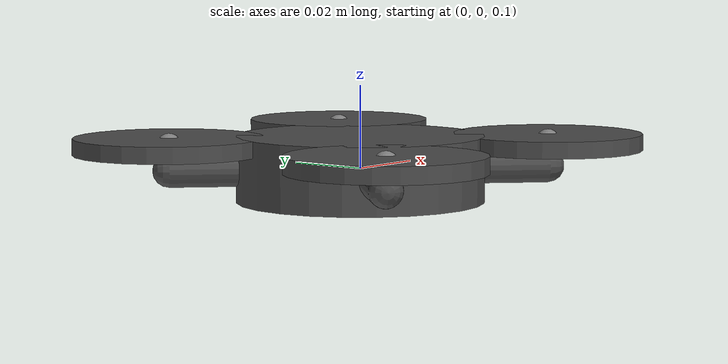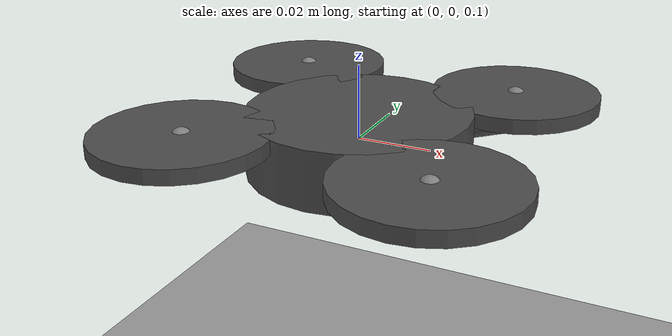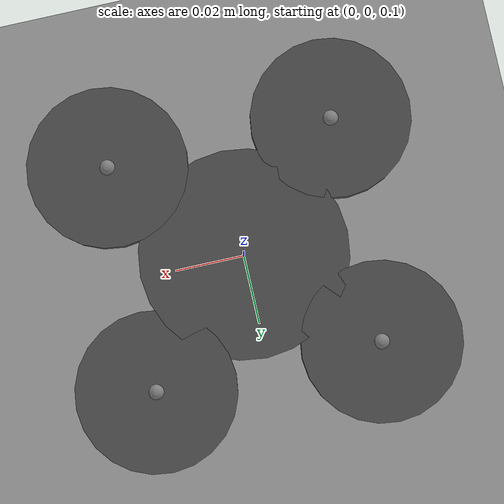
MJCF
<mujoco model="quadrotor">

  <compiler angle="radian" autolimits="true"/>

  <!--
    Crazyflie-class micro quadrotor
    Total mass  : ~34g
    Arm length  : 46mm (center to rotor)
    Max thrust  : 0.15 N per rotor  (0.6 N total = ~1.8x hover thrust)
  -->
  <option gravity="0 0 -9.81" timestep="0.002"/>

  <default>
    <joint damping="0.0005"/>
    <geom rgba="0.3 0.3 0.3 1"/>
  </default>

  <asset>
    <material name="body_mat"  rgba="0.2 0.2 0.8 1"/>
    <material name="rotor_mat" rgba="0.8 0.2 0.2 1"/>
    <material name="arm_mat"   rgba="0.15 0.15 0.15 1"/>
  </asset>

  <worldbody>

    <light pos="0 0 3" dir="0 0 -1" diffuse="1 1 1"/>
    <geom name="ground" type="plane" size="5 5 0.1" rgba="0.6 0.6 0.6 1"/>

    <body name="quadrotor" pos="0 0 0.1">

      <freejoint name="root"/>

      <!-- Central hub: 27g, radius 30mm -->
      <geom name="hub" type="cylinder" size="0.03 0.008"
            material="body_mat" mass="0.027"/>

      <!-- IMU site at CoM -->
      <site name="imu" pos="0 0 0" size="0.005"/>

      <!-- Arms: 2g each, 46mm from center (X config) -->
      <geom name="arm1" type="capsule"
            fromto="0 0 0  0.0325 0.0325 0"
            size="0.004" material="arm_mat" mass="0.002"/>
      <geom name="arm2" type="capsule"
            fromto="0 0 0  0.0325 -0.0325 0"
            size="0.004" material="arm_mat" mass="0.002"/>
      <geom name="arm3" type="capsule"
            fromto="0 0 0  -0.0325 -0.0325 0"
            size="0.004" material="arm_mat" mass="0.002"/>
      <geom name="arm4" type="capsule"
            fromto="0 0 0  -0.0325 0.0325 0"
            size="0.004" material="arm_mat" mass="0.002"/>

      <!-- Rotor discs: 1g each -->
      <geom name="rotor1" type="cylinder" size="0.023 0.002"
            pos=" 0.0325  0.0325 0.006" material="rotor_mat" mass="0.001"/>
      <geom name="rotor2" type="cylinder" size="0.023 0.002"
            pos=" 0.0325 -0.0325 0.006" material="rotor_mat" mass="0.001"/>
      <geom name="rotor3" type="cylinder" size="0.023 0.002"
            pos="-0.0325 -0.0325 0.006" material="rotor_mat" mass="0.001"/>
      <geom name="rotor4" type="cylinder" size="0.023 0.002"
            pos="-0.0325  0.0325 0.006" material="rotor_mat" mass="0.001"/>

      <!-- Thrust sites -->
      <site name="rotor1_site" pos=" 0.0325  0.0325 0.006" size="0.003"/>
      <site name="rotor2_site" pos=" 0.0325 -0.0325 0.006" size="0.003"/>
      <site name="rotor3_site" pos="-0.0325 -0.0325 0.006" size="0.003"/>
      <site name="rotor4_site" pos="-0.0325  0.0325 0.006" size="0.003"/>

    </body>
  </worldbody>

  <!-- Max thrust 0.15 N per rotor (total 0.6 N vs hover need of ~0.33 N) -->
  <actuator>
    <general name="rotor1" site="rotor1_site"
             gear="0 0 1 0 0 0" ctrllimited="true" ctrlrange="0 0.15"/>
    <general name="rotor2" site="rotor2_site"
             gear="0 0 1 0 0 0" ctrllimited="true" ctrlrange="0 0.15"/>
    <general name="rotor3" site="rotor3_site"
             gear="0 0 1 0 0 0" ctrllimited="true" ctrlrange="0 0.15"/>
    <general name="rotor4" site="rotor4_site"
             gear="0 0 1 0 0 0" ctrllimited="true" ctrlrange="0 0.15"/>
  </actuator>

  <sensor>
    <accelerometer name="accel" site="imu"/>
    <gyro          name="gyro"  site="imu"/>
  </sensor>

</mujoco>
